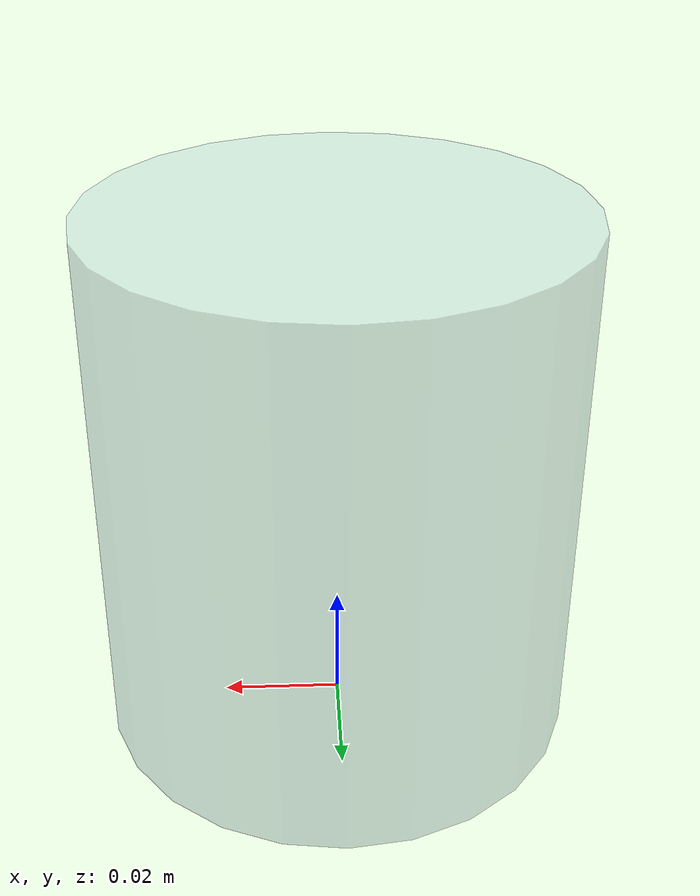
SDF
<?xml version="1.0" ?>
<sdf version="1.9">
  <model name="serving_glass">
    <!-- Link origin is the center of the glass's base. -->
    <link name="glass_link">
      <inertial>
        <pose>0 0 0.045 0 0 0</pose>
        <mass>0.3</mass>
        <inertia>
          <ixx>0.0003225</ixx>
          <iyy>0.0003225</iyy>
          <izz>0.00024</izz>
          <ixy>0</ixy>
          <ixz>0</ixz>
          <iyz>0</iyz>
        </inertia>
      </inertial>

      <visual name="glass_visual">
        <pose>0 0 0.045 0 0 0</pose>
        <geometry>
          <cylinder>
            <radius>0.04</radius>
            <length>0.09</length>
          </cylinder>
        </geometry>
        <material>
          <ambient>0.6 0.7 0.7 0.4</ambient>
          <diffuse>0.7 0.85 0.85 0.4</diffuse>
          <specular>0.9 0.9 0.9 0.6</specular>
        </material>
      </visual>

      <collision name="glass_collision">
        <pose>0 0 0.045 0 0 0</pose>
        <geometry>
          <cylinder>
            <radius>0.04</radius>
            <length>0.09</length>
          </cylinder>
        </geometry>
        <surface>
          <friction>
            <ode>
              <mu>0.7</mu>
              <mu2>0.7</mu2>
            </ode>
          </friction>
        </surface>
      </collision>
    </link>
  </model>
</sdf>
